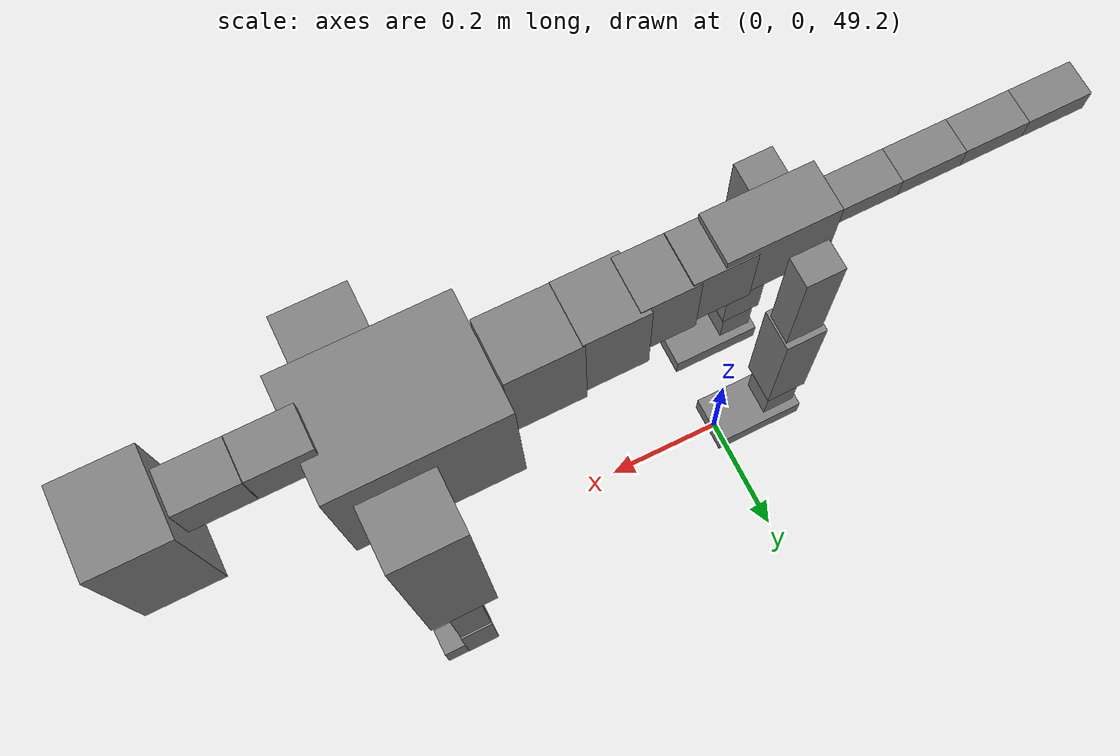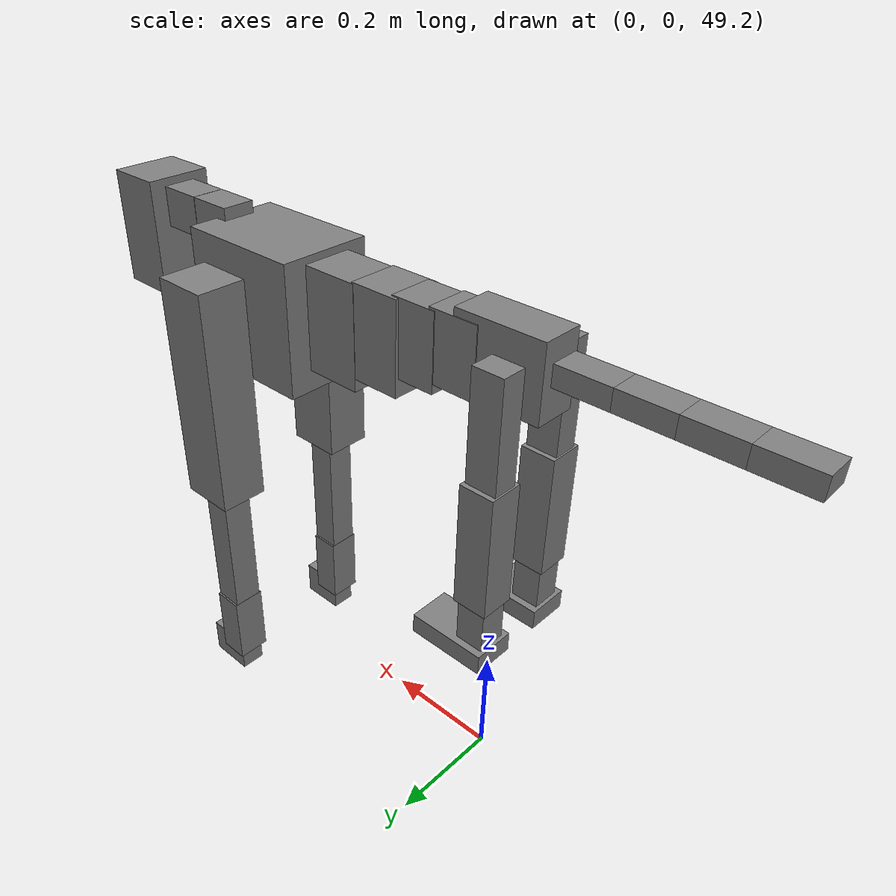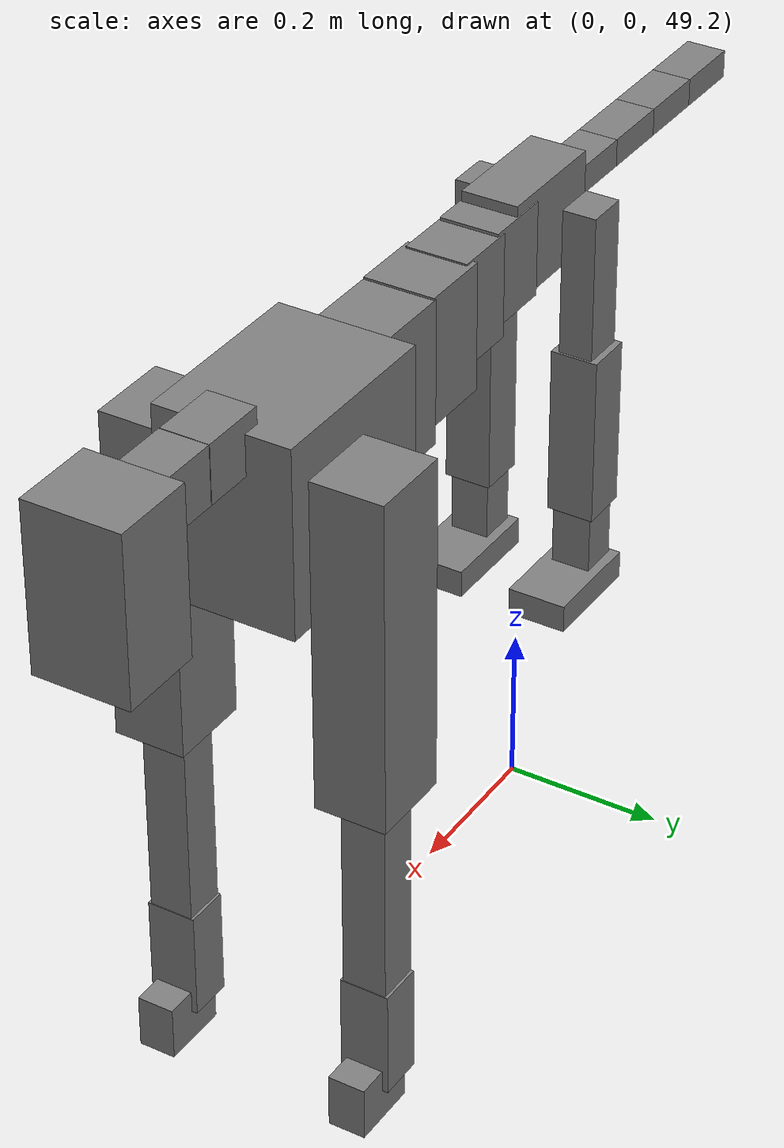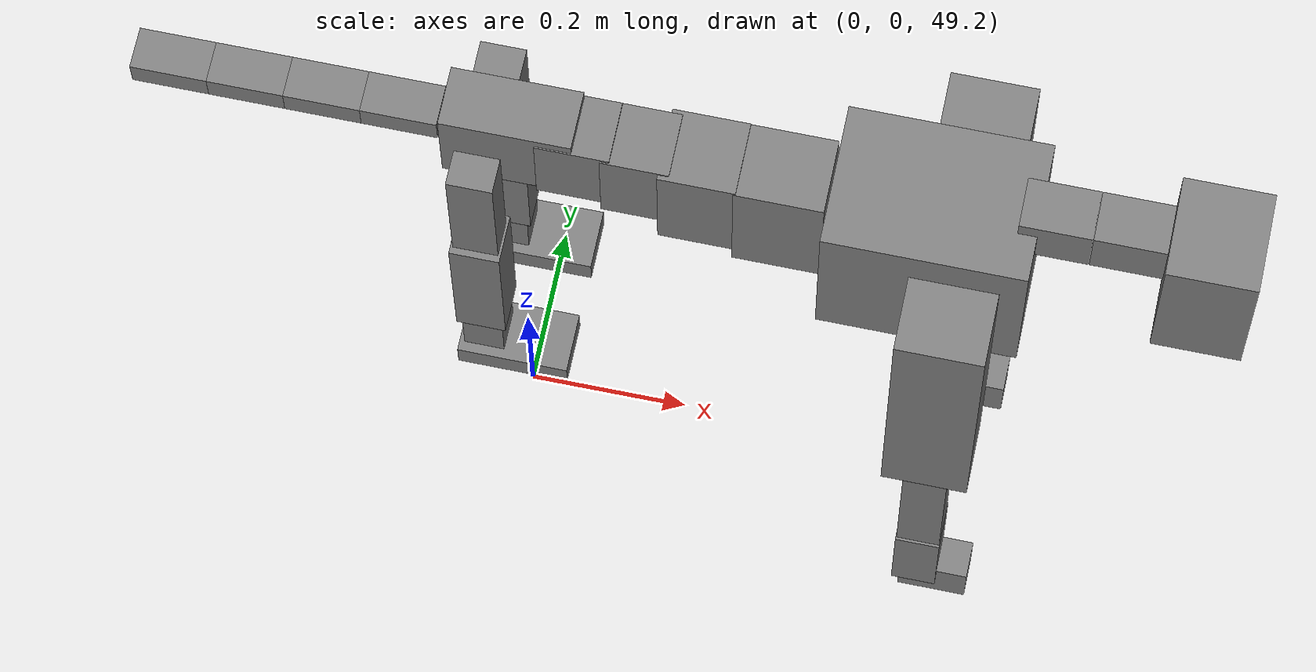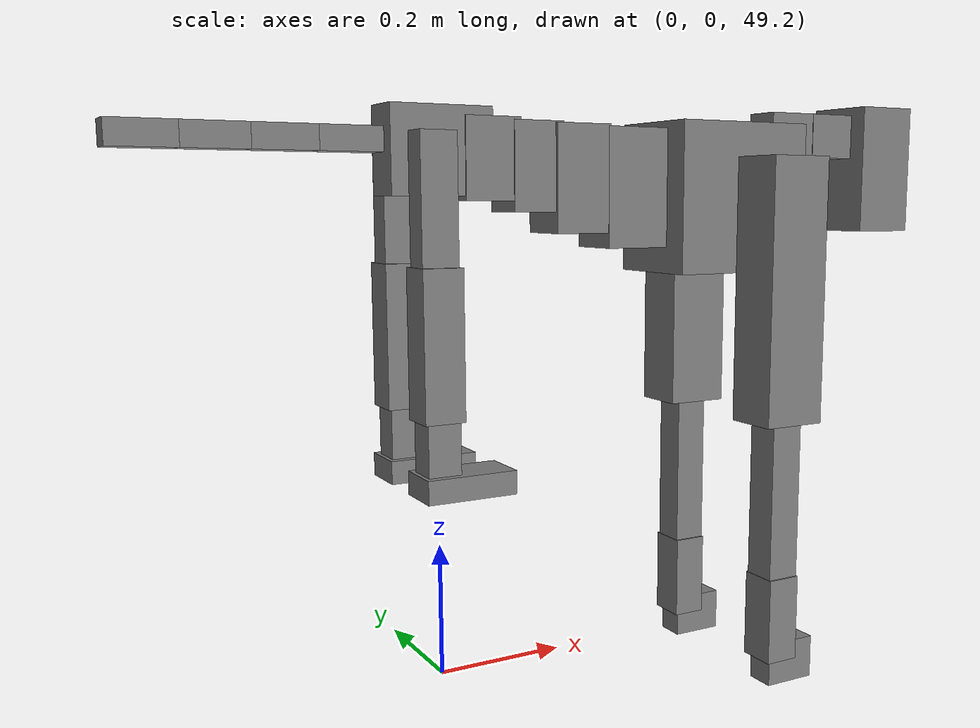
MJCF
<mujoco model="dog">

    <default>
        <joint armature="0.02" stiffness="1" damping="0.2" limited="true"/>
        <geom condim="3" friction="1 0.05 0.05" margin="0.01"/>
        <motor ctrllimited="true" ctrlrange="-1.0 1.0" forcelimited="true" gear="50"/>
    </default>

    <compiler inertiafromgeom="true" angle="radian"/>

    <option timestep="0.016" iterations="50" tolerance="1e-10" solver="Newton" jacobian="dense" cone="pyramidal"/>

    <size nconmax="20000" njmax="60000" nstack="5000000"/>
    <visual>
        <map force="0.1" zfar="30"/>
        <rgba haze="0.15 0.25 0.35 1"/>
        <quality shadowsize="2048"/>
        <global offwidth="800" offheight="800"/>
    </visual>

    <asset>
        <texture type="skybox" builtin="gradient" rgb1="0.3 0.5 0.7" rgb2="0 0 0" width="512" height="512"/>
        <texture name="texplane" type="2d" builtin="checker" rgb1=".2 .3 .4" rgb2=".1 0.15 0.2" width="512" height="512"
                 mark="cross" markrgb=".8 .8 .8"/>
        <texture name="texgeom" type="cube" builtin="flat" mark="cross" width="127" height="1278" rgb1="0.8 0.6 0.4"
                 rgb2="0.8 0.6 0.4" markrgb="1 1 1" random="0.01"/>

        <material name="matplane" reflectance="0.3" texture="texplane" texrepeat="1 1" texuniform="true"/>
        <material name="matgeom" texture="texgeom" texuniform="true" rgba="0.8 0.6 .4 1"/>
    </asset>

    <worldbody>
        <geom name="floor" pos="0 0 0" size="0 0 .25" type="plane" material="matplane" condim="3"/>

        <light directional="false" diffuse=".2 .2 .2" specular="0 0 0" pos="0 0 5" dir="0 0 -1" castshadow="false"/>
        <light mode="targetbodycom" target="torso" directional="false" diffuse=".8 .8 .8" specular="0.3 0.3 0.3"
               pos="0 0 4.0" dir="0 0 -1"/>

        <body name="root" pos="0 0 50">
            <freejoint name="root_1"/>
            <geom type="box" pos="0 0 -0.02" size="0.0774  0.0358  0.063" density="2030"/>

            <body name="spine1" pos="0.054 0 0">
                <joint name="spine1_y" axis="0 1 0" range="0 0.7" limited="true"/>
                <geom type="box" pos="0.02375 0 -0.03" size="0.04375  0.0375  0.05985" density="2030"/>

                <body name="spine2" pos="0.0612 0 0">
                    <joint name="spine2_y" axis="0 1 0" range="-0.15 0.15" limited="true"/>
                    <geom type="box" pos="0.03555  0  -0.04" size="0.04055  0.039  0.06615" density="2030"/>

                    <body name="spine3" pos="0.0730 0 0">
                        <joint name="spine3_y" axis="0 1 0" range="-0.15 0.15" limited="true"/>
                        <geom type="box" pos="0.03555  0  -0.057" size="0.04555  0.0445  0.081" density="2030"/>

                        <body name="spine4" pos="0.0780 0 0">
                            <joint name="spine4_y" axis="0 1 0" range="-0.15 0.15" limited="true"/>
                            <geom type="box" pos="0.05265  0  -0.07" size="0.05265  0.045  0.09135" density="2030"/>

                            <body name="torso" pos="0.1082 0 0">
                                <joint name="torso_y" axis="0 1 0" range="-0.15 0.15" limited="true"/>
                                <geom type="box" pos="0.11925  0  -0.085" size="0.11925  0.085  0.11745"
                                      density="2030"/>

                                <body name="neck1" pos="0.2160  0   0.0180">
                                    <joint name="neck1_y" axis="0 1 0" range="-1.2  -1" limited="true"/>
                                    <geom type="box" pos="0.0423  0  0" size="0.0423  0.03  0.036" density="2325"/>

                                    <body name="neck2" pos="0.0853  0  0">
                                        <joint name="neck2_y" axis="0 1 0" range="0.1  0" limited="true"/>
                                        <geom type="box" pos="0.0423  0  0" size="0.0423  0.03  0.036" density="2325"/>

                                        <body name="head" pos="0.0853  0  0">
                                            <joint name="head_y" axis="0 1 0" range="-0.3  -0.2" limited="true"/>
                                            <geom type="box" pos="0.0531  0  -0.055" size="0.0531  0.06  0.1044"
                                                  density="4030"/>

                                        </body>
                                    </body>
                                </body>

                                <body name="front_shoulder" pos="0.156  0   -0.0480">
                                    <joint name="front_shoulder_y" axis="0 1 0" range="-1 1.5" limited="true"/>
                                    <geom type="box" pos="0 0.13 -0.1823" size="0.0524  0.0448  0.2089" density="1158"/>
                                    <geom type="box" pos="0 -0.13 -0.1823" size="0.0524  0.0448  0.2089"
                                          density="1158"/>

                                    <body name="front_elbow" pos="0  0  -0.3646">
                                        <joint name="front_elbow_y" axis="0 1 0" range="-2 0" limited="true"/>
                                        <geom type="box" pos="0 0.13 -0.1468" size="0.0270  0.0276  0.1468"
                                              density="1081"/>
                                        <geom type="box" pos="0 -0.13 -0.1468" size="0.0270  0.0276  0.1468"
                                              density="1081"/>

                                        <body name="front_wrist" pos="0  0  -0.2936">
                                            <joint name="front_wrist_y" axis="0 1 0" range="-0.2 0" limited="true"/>
                                            <geom type="box" pos="0 0.13 -0.0568" size="0.0279  0.0310  0.0699"
                                                  density="1664"/>
                                            <geom type="box" pos="0 -0.13 -0.0568" size="0.0279  0.0310  0.0699"
                                                  density="1664"/>

                                            <body name="front_finger_end" pos="0  0  -0.1135">
                                                <joint name="front_finger_y" axis="0 1 0" range="-0.4 1"
                                                       limited="true"/>
                                                <geom type="box" pos="0.0236  0.13  -0.0197"
                                                      size="0.0433  0.0236  0.0347" density="1515"/>
                                                <geom type="box" pos="0.0236  -0.13  -0.0197"
                                                      size="0.0433  0.0236  0.0347" density="1515"/>

                                            </body>

                                        </body>
                                    </body>
                                </body>

                            </body>
                        </body>
                    </body>
                </body>
            </body>

            <body name="back_hip" pos="-0.03 0 -0.018">
                <joint name="back_hip_y" axis="0 1 0" range="-1.5 0.3" limited="true"/>
                <geom type="box" pos="0 0.07 -0.0889" size="0.0272  0.0213  0.1117" density="1154"/>
                <geom type="box" pos="0 -0.07 -0.0889" size="0.0272  0.0213  0.1117" density="1154"/>

                <body name="back_knee" pos="0  0  -0.1777">
                    <joint name="back_knee_y" axis="0 1 0" range="0 2.8" limited="true"/>
                    <geom type="box" pos="0 0.07 -0.0922" size="0.0302  0.0298  0.1077" density="1227"/>
                    <geom type="box" pos="0 -0.07 -0.0922" size="0.0302  0.0298  0.1077" density="1227"/>

                    <body name="back_ankle" pos="0  0  -0.1844">
                        <joint name="back_ankle_y" axis="0 1 0" range="-2.2 0" limited="true"/>
                        <geom type="box" pos="0 0.07 -0.0530" size="0.0247  0.0247  0.0642" density="1284"/>
                        <geom type="box" pos="0 -0.07 -0.0530" size="0.0247  0.0247  0.0642" density="1284"/>

                        <body name="back_toe_end" pos="0  0  -0.1059">
                            <joint name="back_toe_y" axis="0 1 0" range="-0.4 1" limited="true"/>
                            <geom type="box" pos="0.0372  0.07  -0.0025" size="0.0682  0.0372  0.0175" density="1515"/>
                            <geom type="box" pos="0.0372  -0.07  -0.0025" size="0.0682  0.0372  0.0175" density="1515"/>

                        </body>
                    </body>
                </body>
            </body>

            <body name="tail1" pos="-0.074 0 -0.006">
                <joint name="tail1_y" axis="0 1 0" range="-0.2 0.2" limited="true"/>
                <geom type="box" pos="-0.0536  0  0" size="0.045  0.025  0.0175" density="1587"/>

                <body name="tail2" pos="-0.09 0 0">
                    <joint name="tail2_y" axis="0 1 0" range="-0.2 0.2" limited="true"/>
                    <geom type="box" pos="-0.0536  0  0" size="0.045  0.025  0.0175" density="1587"/>

                    <body name="tail3" pos="-0.09 0 0">
                        <joint name="tail3_y" axis="0 1 0" range="-0.2 0.2" limited="true"/>
                        <geom type="box" pos="-0.0536  0  0" size="0.045  0.025  0.0175" density="1587"/>

                        <body name="tail4" pos="-0.09 0 0">
                            <joint name="tail4_y" axis="0 1 0" range="-0.2 0.2" limited="true"/>
                            <geom type="box" pos="-0.0536  0  0" size="0.045  0.025  0.0175" density="1587"/>

                        </body>
                    </body>
                </body>
            </body>
        </body>
    </worldbody>

    <actuator>
        <motor joint="spine1_y" forcerange="-150 150     "/>
        <motor joint="spine2_y" forcerange="-150 150     "/>
        <motor joint="spine3_y" forcerange="-150 150     "/>
        <motor joint="spine4_y" forcerange="-150 150     "/>
        <motor joint="torso_y" forcerange="-150 150     "/>
        <motor joint="neck1_y" forcerange="-100 100       "/>
        <motor joint="neck2_y" forcerange="-100 100       "/>
        <motor joint="head_y" forcerange="-150 150       "/>
        <motor joint="front_shoulder_y" forcerange="-199.65 199.18"/>
        <motor joint="front_elbow_y" forcerange="-180.06 120.69"/>
        <motor joint="front_wrist_y" forcerange="-147.30 101.03"/>
        <motor joint="front_finger_y" forcerange="-62.62 23.44"/>
        <motor joint="back_hip_y" forcerange="-218.01 266.58"/>
        <motor joint="back_knee_y" forcerange="-350.86 282.34"/>
        <motor joint="back_angle_y" forcerange="-127.91 167.34"/>
        <motor joint="back_toe_y" forcerange="-89.29 128.16"/>
        <motor joint="tail1_y" forcerange="-50 50     "/>
        <motor joint="tail2_y" forcerange="-50 50     "/>
        <motor joint="tail3_y" forcerange="-50 50     "/>
        <motor joint="tail4_y" forcerange="-50 50     "/>
    </actuator>
</mujoco>
